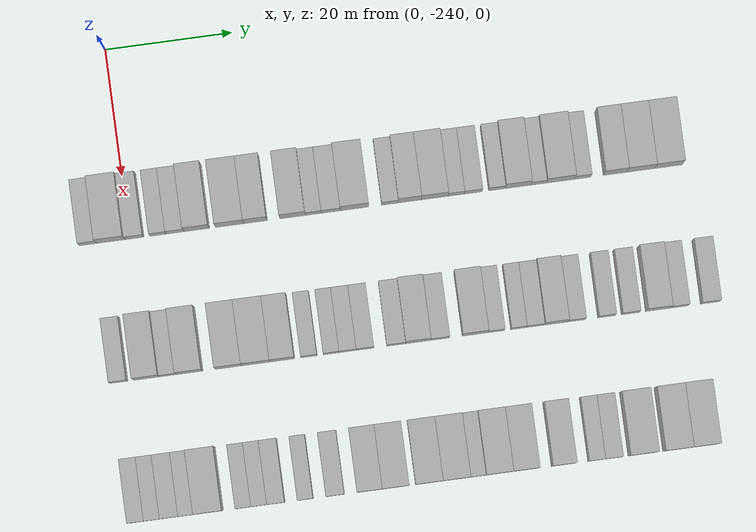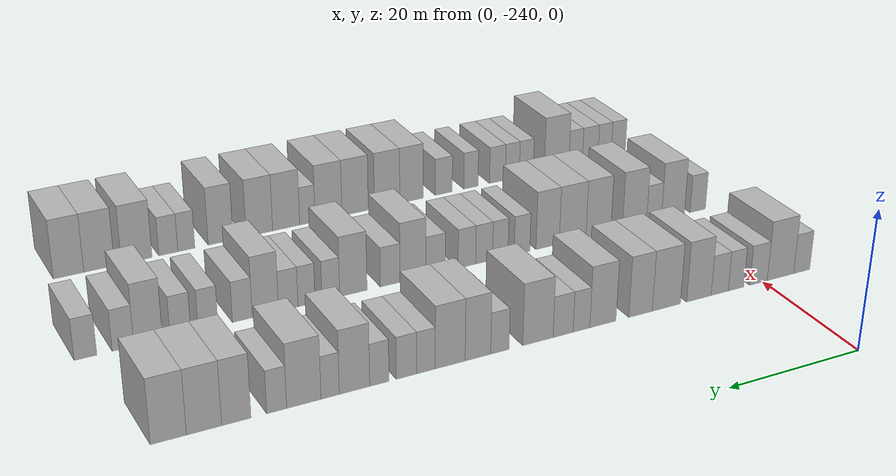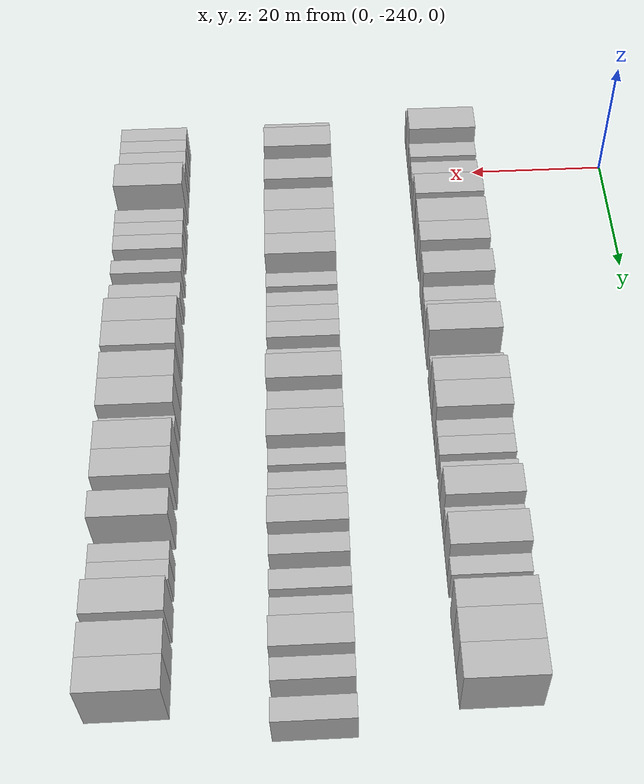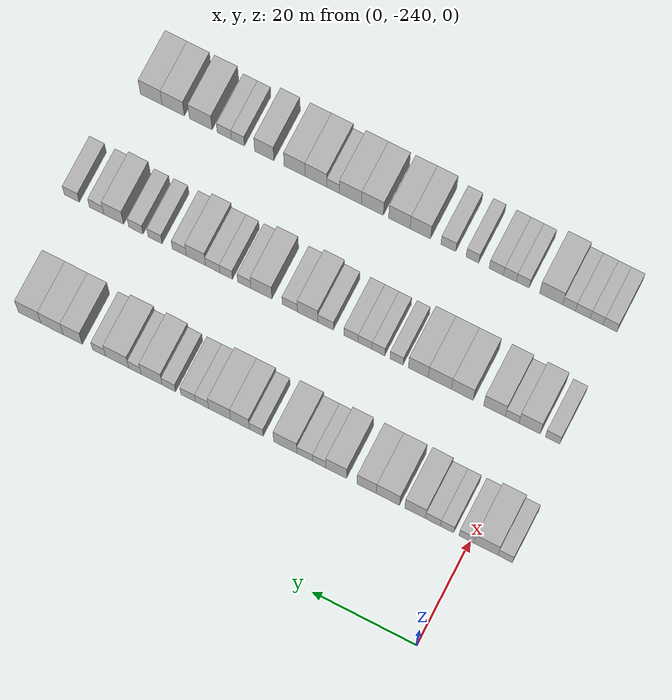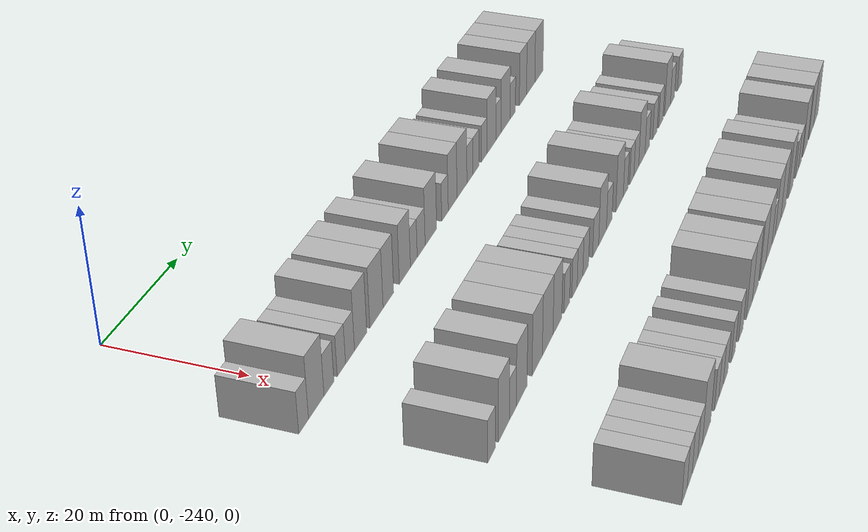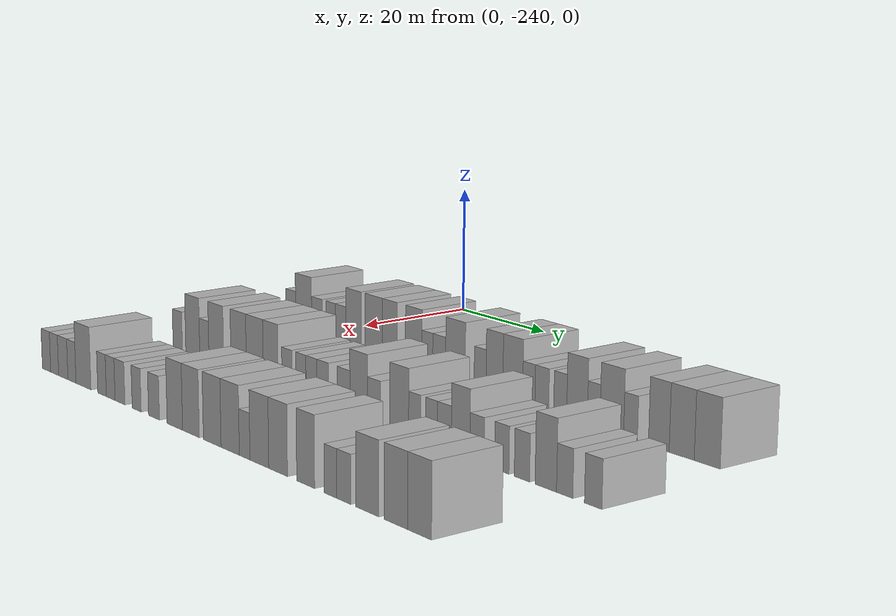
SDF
<sdf version="1.6">
 <world name="default">
  <model name="building_1">
   <static>1</static>
   <pose>25.0000 -246.6226 0 0.000000 0.000000 0.000000</pose>
   <link name="link">
    <pose>0 0 3.00 0 0 0</pose>
    <collision name="collision"><geometry><box><size>10.0000 2.7547 6.0000</size></box></geometry></collision>
    <visual name="visual">
     <cast_shadows>0</cast_shadows>
     <geometry><box><size>10.0000 2.7547 6.0000</size></box></geometry>
     <material>
      <script>
       <uri>model://HANNAS_wall/materials/scripts</uri>
       <uri>model://HANNAS_wall/materials/textures</uri>
       <name>vrc/HANNAS_wall</name>
      </script>
     </material>
    </visual>
   </link>
  </model>
  <model name="building_2">
   <static>1</static>
   <pose>25.0000 -243.0029 0 0.000000 0.000000 0.000000</pose>
   <link name="link">
    <pose>0 0 4.50 0 0 0</pose>
    <collision name="collision"><geometry><box><size>10.0000 4.4848 9.0000</size></box></geometry></collision>
    <visual name="visual">
     <cast_shadows>0</cast_shadows>
     <geometry><box><size>10.0000 4.4848 9.0000</size></box></geometry>
     <material>
      <script>
       <uri>model://HANNAS_wall/materials/scripts</uri>
       <uri>model://HANNAS_wall/materials/textures</uri>
       <name>vrc/HANNAS_wall</name>
      </script>
     </material>
    </visual>
   </link>
  </model>
  <model name="building_3">
   <static>1</static>
   <pose>25.0000 -239.2915 0 0.000000 0.000000 0.000000</pose>
   <link name="link">
    <pose>0 0 3.00 0 0 0</pose>
    <collision name="collision"><geometry><box><size>10.0000 2.9379 6.0000</size></box></geometry></collision>
    <visual name="visual">
     <cast_shadows>0</cast_shadows>
     <geometry><box><size>10.0000 2.9379 6.0000</size></box></geometry>
     <material>
      <script>
       <uri>model://HANNAS_wall/materials/scripts</uri>
       <uri>model://HANNAS_wall/materials/textures</uri>
       <name>vrc/HANNAS_wall</name>
      </script>
     </material>
    </visual>
   </link>
  </model>
  <model name="building_4">
   <static>1</static>
   <pose>25.0000 -235.5439 0 0.000000 0.000000 0.000000</pose>
   <link name="link">
    <pose>0 0 3.00 0 0 0</pose>
    <collision name="collision"><geometry><box><size>10.0000 2.5574 6.0000</size></box></geometry></collision>
    <visual name="visual">
     <cast_shadows>0</cast_shadows>
     <geometry><box><size>10.0000 2.5574 6.0000</size></box></geometry>
     <material>
      <script>
       <uri>model://HANNAS_wall/materials/scripts</uri>
       <uri>model://HANNAS_wall/materials/textures</uri>
       <name>vrc/HANNAS_wall</name>
      </script>
     </material>
    </visual>
   </link>
  </model>
  <model name="building_5">
   <static>1</static>
   <pose>25.0000 -232.8576 0 0.000000 0.000000 0.000000</pose>
   <link name="link">
    <pose>0 0 3.00 0 0 0</pose>
    <collision name="collision"><geometry><box><size>10.0000 2.8151 6.0000</size></box></geometry></collision>
    <visual name="visual">
     <cast_shadows>0</cast_shadows>
     <geometry><box><size>10.0000 2.8151 6.0000</size></box></geometry>
     <material>
      <script>
       <uri>model://HANNAS_wall/materials/scripts</uri>
       <uri>model://HANNAS_wall/materials/textures</uri>
       <name>vrc/HANNAS_wall</name>
      </script>
     </material>
    </visual>
   </link>
  </model>
  <model name="building_6">
   <static>1</static>
   <pose>25.0000 -229.4669 0 0.000000 0.000000 0.000000</pose>
   <link name="link">
    <pose>0 0 4.50 0 0 0</pose>
    <collision name="collision"><geometry><box><size>10.0000 3.9663 9.0000</size></box></geometry></collision>
    <visual name="visual">
     <cast_shadows>0</cast_shadows>
     <geometry><box><size>10.0000 3.9663 9.0000</size></box></geometry>
     <material>
      <script>
       <uri>model://HANNAS_wall/materials/scripts</uri>
       <uri>model://HANNAS_wall/materials/textures</uri>
       <name>vrc/HANNAS_wall</name>
      </script>
     </material>
    </visual>
   </link>
  </model>
  <model name="building_7">
   <static>1</static>
   <pose>25.0000 -224.2547 0 0.000000 0.000000 0.000000</pose>
   <link name="link">
    <pose>0 0 4.50 0 0 0</pose>
    <collision name="collision"><geometry><box><size>10.0000 4.4581 9.0000</size></box></geometry></collision>
    <visual name="visual">
     <cast_shadows>0</cast_shadows>
     <geometry><box><size>10.0000 4.4581 9.0000</size></box></geometry>
     <material>
      <script>
       <uri>model://HANNAS_wall/materials/scripts</uri>
       <uri>model://HANNAS_wall/materials/textures</uri>
       <name>vrc/HANNAS_wall</name>
      </script>
     </material>
    </visual>
   </link>
  </model>
  <model name="building_8">
   <static>1</static>
   <pose>25.0000 -220.1906 0 0.000000 0.000000 0.000000</pose>
   <link name="link">
    <pose>0 0 4.50 0 0 0</pose>
    <collision name="collision"><geometry><box><size>10.0000 3.6701 9.0000</size></box></geometry></collision>
    <visual name="visual">
     <cast_shadows>0</cast_shadows>
     <geometry><box><size>10.0000 3.6701 9.0000</size></box></geometry>
     <material>
      <script>
       <uri>model://HANNAS_wall/materials/scripts</uri>
       <uri>model://HANNAS_wall/materials/textures</uri>
       <name>vrc/HANNAS_wall</name>
      </script>
     </material>
    </visual>
   </link>
  </model>
  <model name="building_9">
   <static>1</static>
   <pose>25.0000 -214.3518 0 0.000000 0.000000 0.000000</pose>
   <link name="link">
    <pose>0 0 4.50 0 0 0</pose>
    <collision name="collision"><geometry><box><size>10.0000 4.0076 9.0000</size></box></geometry></collision>
    <visual name="visual">
     <cast_shadows>0</cast_shadows>
     <geometry><box><size>10.0000 4.0076 9.0000</size></box></geometry>
     <material>
      <script>
       <uri>model://HANNAS_wall/materials/scripts</uri>
       <uri>model://HANNAS_wall/materials/textures</uri>
       <name>vrc/HANNAS_wall</name>
      </script>
     </material>
    </visual>
   </link>
  </model>
  <model name="building_10">
   <static>1</static>
   <pose>25.0000 -211.0869 0 0.000000 0.000000 0.000000</pose>
   <link name="link">
    <pose>0 0 3.00 0 0 0</pose>
    <collision name="collision"><geometry><box><size>10.0000 2.5222 6.0000</size></box></geometry></collision>
    <visual name="visual">
     <cast_shadows>0</cast_shadows>
     <geometry><box><size>10.0000 2.5222 6.0000</size></box></geometry>
     <material>
      <script>
       <uri>model://HANNAS_wall/materials/scripts</uri>
       <uri>model://HANNAS_wall/materials/textures</uri>
       <name>vrc/HANNAS_wall</name>
      </script>
     </material>
    </visual>
   </link>
  </model>
  <model name="building_11">
   <static>1</static>
   <pose>25.0000 -208.3262 0 0.000000 0.000000 0.000000</pose>
   <link name="link">
    <pose>0 0 3.00 0 0 0</pose>
    <collision name="collision"><geometry><box><size>10.0000 2.9993 6.0000</size></box></geometry></collision>
    <visual name="visual">
     <cast_shadows>0</cast_shadows>
     <geometry><box><size>10.0000 2.9993 6.0000</size></box></geometry>
     <material>
      <script>
       <uri>model://HANNAS_wall/materials/scripts</uri>
       <uri>model://HANNAS_wall/materials/textures</uri>
       <name>vrc/HANNAS_wall</name>
      </script>
     </material>
    </visual>
   </link>
  </model>
  <model name="building_12">
   <static>1</static>
   <pose>25.0000 -204.5847 0 0.000000 0.000000 0.000000</pose>
   <link name="link">
    <pose>0 0 4.50 0 0 0</pose>
    <collision name="collision"><geometry><box><size>10.0000 4.4837 9.0000</size></box></geometry></collision>
    <visual name="visual">
     <cast_shadows>0</cast_shadows>
     <geometry><box><size>10.0000 4.4837 9.0000</size></box></geometry>
     <material>
      <script>
       <uri>model://HANNAS_wall/materials/scripts</uri>
       <uri>model://HANNAS_wall/materials/textures</uri>
       <name>vrc/HANNAS_wall</name>
      </script>
     </material>
    </visual>
   </link>
  </model>
  <model name="building_13">
   <static>1</static>
   <pose>25.0000 -199.0204 0 0.000000 0.000000 0.000000</pose>
   <link name="link">
    <pose>0 0 3.00 0 0 0</pose>
    <collision name="collision"><geometry><box><size>10.0000 2.6449 6.0000</size></box></geometry></collision>
    <visual name="visual">
     <cast_shadows>0</cast_shadows>
     <geometry><box><size>10.0000 2.6449 6.0000</size></box></geometry>
     <material>
      <script>
       <uri>model://HANNAS_wall/materials/scripts</uri>
       <uri>model://HANNAS_wall/materials/textures</uri>
       <name>vrc/HANNAS_wall</name>
      </script>
     </material>
    </visual>
   </link>
  </model>
  <model name="building_14">
   <static>1</static>
   <pose>25.0000 -195.8734 0 0.000000 0.000000 0.000000</pose>
   <link name="link">
    <pose>0 0 4.50 0 0 0</pose>
    <collision name="collision"><geometry><box><size>10.0000 3.6491 9.0000</size></box></geometry></collision>
    <visual name="visual">
     <cast_shadows>0</cast_shadows>
     <geometry><box><size>10.0000 3.6491 9.0000</size></box></geometry>
     <material>
      <script>
       <uri>model://HANNAS_wall/materials/scripts</uri>
       <uri>model://HANNAS_wall/materials/textures</uri>
       <name>vrc/HANNAS_wall</name>
      </script>
     </material>
    </visual>
   </link>
  </model>
  <model name="building_15">
   <static>1</static>
   <pose>25.0000 -191.9435 0 0.000000 0.000000 0.000000</pose>
   <link name="link">
    <pose>0 0 4.50 0 0 0</pose>
    <collision name="collision"><geometry><box><size>10.0000 4.2108 9.0000</size></box></geometry></collision>
    <visual name="visual">
     <cast_shadows>0</cast_shadows>
     <geometry><box><size>10.0000 4.2108 9.0000</size></box></geometry>
     <material>
      <script>
       <uri>model://HANNAS_wall/materials/scripts</uri>
       <uri>model://HANNAS_wall/materials/textures</uri>
       <name>vrc/HANNAS_wall</name>
      </script>
     </material>
    </visual>
   </link>
  </model>
  <model name="building_16">
   <static>1</static>
   <pose>25.0000 -188.5577 0 0.000000 0.000000 0.000000</pose>
   <link name="link">
    <pose>0 0 3.00 0 0 0</pose>
    <collision name="collision"><geometry><box><size>10.0000 2.5607 6.0000</size></box></geometry></collision>
    <visual name="visual">
     <cast_shadows>0</cast_shadows>
     <geometry><box><size>10.0000 2.5607 6.0000</size></box></geometry>
     <material>
      <script>
       <uri>model://HANNAS_wall/materials/scripts</uri>
       <uri>model://HANNAS_wall/materials/textures</uri>
       <name>vrc/HANNAS_wall</name>
      </script>
     </material>
    </visual>
   </link>
  </model>
  <model name="building_17">
   <static>1</static>
   <pose>25.0000 -185.8615 0 0.000000 0.000000 0.000000</pose>
   <link name="link">
    <pose>0 0 3.00 0 0 0</pose>
    <collision name="collision"><geometry><box><size>10.0000 2.8317 6.0000</size></box></geometry></collision>
    <visual name="visual">
     <cast_shadows>0</cast_shadows>
     <geometry><box><size>10.0000 2.8317 6.0000</size></box></geometry>
     <material>
      <script>
       <uri>model://HANNAS_wall/materials/scripts</uri>
       <uri>model://HANNAS_wall/materials/textures</uri>
       <name>vrc/HANNAS_wall</name>
      </script>
     </material>
    </visual>
   </link>
  </model>
  <model name="building_18">
   <static>1</static>
   <pose>25.0000 -182.1435 0 0.000000 0.000000 0.000000</pose>
   <link name="link">
    <pose>0 0 3.00 0 0 0</pose>
    <collision name="collision"><geometry><box><size>10.0000 2.6043 6.0000</size></box></geometry></collision>
    <visual name="visual">
     <cast_shadows>0</cast_shadows>
     <geometry><box><size>10.0000 2.6043 6.0000</size></box></geometry>
     <material>
      <script>
       <uri>model://HANNAS_wall/materials/scripts</uri>
       <uri>model://HANNAS_wall/materials/textures</uri>
       <name>vrc/HANNAS_wall</name>
      </script>
     </material>
    </visual>
   </link>
  </model>
  <model name="building_19">
   <static>1</static>
   <pose>25.0000 -178.8061 0 0.000000 0.000000 0.000000</pose>
   <link name="link">
    <pose>0 0 4.50 0 0 0</pose>
    <collision name="collision"><geometry><box><size>10.0000 4.0706 9.0000</size></box></geometry></collision>
    <visual name="visual">
     <cast_shadows>0</cast_shadows>
     <geometry><box><size>10.0000 4.0706 9.0000</size></box></geometry>
     <material>
      <script>
       <uri>model://HANNAS_wall/materials/scripts</uri>
       <uri>model://HANNAS_wall/materials/textures</uri>
       <name>vrc/HANNAS_wall</name>
      </script>
     </material>
    </visual>
   </link>
  </model>
  <model name="building_20">
   <static>1</static>
   <pose>25.0000 -175.5653 0 0.000000 0.000000 0.000000</pose>
   <link name="link">
    <pose>0 0 3.00 0 0 0</pose>
    <collision name="collision"><geometry><box><size>10.0000 2.4108 6.0000</size></box></geometry></collision>
    <visual name="visual">
     <cast_shadows>0</cast_shadows>
     <geometry><box><size>10.0000 2.4108 6.0000</size></box></geometry>
     <material>
      <script>
       <uri>model://HANNAS_wall/materials/scripts</uri>
       <uri>model://HANNAS_wall/materials/textures</uri>
       <name>vrc/HANNAS_wall</name>
      </script>
     </material>
    </visual>
   </link>
  </model>
  <model name="building_21">
   <static>1</static>
   <pose>25.0000 -172.1222 0 0.000000 0.000000 0.000000</pose>
   <link name="link">
    <pose>0 0 4.50 0 0 0</pose>
    <collision name="collision"><geometry><box><size>10.0000 4.4754 9.0000</size></box></geometry></collision>
    <visual name="visual">
     <cast_shadows>0</cast_shadows>
     <geometry><box><size>10.0000 4.4754 9.0000</size></box></geometry>
     <material>
      <script>
       <uri>model://HANNAS_wall/materials/scripts</uri>
       <uri>model://HANNAS_wall/materials/textures</uri>
       <name>vrc/HANNAS_wall</name>
      </script>
     </material>
    </visual>
   </link>
  </model>
  <model name="building_22">
   <static>1</static>
   <pose>25.0000 -168.6084 0 0.000000 0.000000 0.000000</pose>
   <link name="link">
    <pose>0 0 3.00 0 0 0</pose>
    <collision name="collision"><geometry><box><size>10.0000 2.5524 6.0000</size></box></geometry></collision>
    <visual name="visual">
     <cast_shadows>0</cast_shadows>
     <geometry><box><size>10.0000 2.5524 6.0000</size></box></geometry>
     <material>
      <script>
       <uri>model://HANNAS_wall/materials/scripts</uri>
       <uri>model://HANNAS_wall/materials/textures</uri>
       <name>vrc/HANNAS_wall</name>
      </script>
     </material>
    </visual>
   </link>
  </model>
  <model name="building_23">
   <static>1</static>
   <pose>25.0000 -163.4872 0 0.000000 0.000000 0.000000</pose>
   <link name="link">
    <pose>0 0 4.50 0 0 0</pose>
    <collision name="collision"><geometry><box><size>10.0000 3.6900 9.0000</size></box></geometry></collision>
    <visual name="visual">
     <cast_shadows>0</cast_shadows>
     <geometry><box><size>10.0000 3.6900 9.0000</size></box></geometry>
     <material>
      <script>
       <uri>model://HANNAS_wall/materials/scripts</uri>
       <uri>model://HANNAS_wall/materials/textures</uri>
       <name>vrc/HANNAS_wall</name>
      </script>
     </material>
    </visual>
   </link>
  </model>
  <model name="building_24">
   <static>1</static>
   <pose>25.0000 -159.4604 0 0.000000 0.000000 0.000000</pose>
   <link name="link">
    <pose>0 0 4.50 0 0 0</pose>
    <collision name="collision"><geometry><box><size>10.0000 4.3637 9.0000</size></box></geometry></collision>
    <visual name="visual">
     <cast_shadows>0</cast_shadows>
     <geometry><box><size>10.0000 4.3637 9.0000</size></box></geometry>
     <material>
      <script>
       <uri>model://HANNAS_wall/materials/scripts</uri>
       <uri>model://HANNAS_wall/materials/textures</uri>
       <name>vrc/HANNAS_wall</name>
      </script>
     </material>
    </visual>
   </link>
  </model>
  <model name="building_25">
   <static>1</static>
   <pose>25.0000 -155.0788 0 0.000000 0.000000 0.000000</pose>
   <link name="link">
    <pose>0 0 4.50 0 0 0</pose>
    <collision name="collision"><geometry><box><size>10.0000 4.3995 9.0000</size></box></geometry></collision>
    <visual name="visual">
     <cast_shadows>0</cast_shadows>
     <geometry><box><size>10.0000 4.3995 9.0000</size></box></geometry>
     <material>
      <script>
       <uri>model://HANNAS_wall/materials/scripts</uri>
       <uri>model://HANNAS_wall/materials/textures</uri>
       <name>vrc/HANNAS_wall</name>
      </script>
     </material>
    </visual>
   </link>
  </model>
  <model name="building_123">
   <static>1</static>
   <pose>47.0000 -244.6189 0 0.000000 0.000000 0.000000</pose>
   <link name="link">
    <pose>0 0 3.00 0 0 0</pose>
    <collision name="collision"><geometry><box><size>10.0000 2.7623 6.0000</size></box></geometry></collision>
    <visual name="visual">
     <cast_shadows>0</cast_shadows>
     <geometry><box><size>10.0000 2.7623 6.0000</size></box></geometry>
     <material>
      <script>
       <uri>model://HANNAS_wall/materials/scripts</uri>
       <uri>model://HANNAS_wall/materials/textures</uri>
       <name>vrc/HANNAS_wall</name>
      </script>
     </material>
    </visual>
   </link>
  </model>
  <model name="building_124">
   <static>1</static>
   <pose>47.0000 -240.2097 0 0.000000 0.000000 0.000000</pose>
   <link name="link">
    <pose>0 0 4.50 0 0 0</pose>
    <collision name="collision"><geometry><box><size>10.0000 4.0561 9.0000</size></box></geometry></collision>
    <visual name="visual">
     <cast_shadows>0</cast_shadows>
     <geometry><box><size>10.0000 4.0561 9.0000</size></box></geometry>
     <material>
      <script>
       <uri>model://HANNAS_wall/materials/scripts</uri>
       <uri>model://HANNAS_wall/materials/textures</uri>
       <name>vrc/HANNAS_wall</name>
      </script>
     </material>
    </visual>
   </link>
  </model>
  <model name="building_125">
   <static>1</static>
   <pose>47.0000 -236.8779 0 0.000000 0.000000 0.000000</pose>
   <link name="link">
    <pose>0 0 3.00 0 0 0</pose>
    <collision name="collision"><geometry><box><size>10.0000 2.6075 6.0000</size></box></geometry></collision>
    <visual name="visual">
     <cast_shadows>0</cast_shadows>
     <geometry><box><size>10.0000 2.6075 6.0000</size></box></geometry>
     <material>
      <script>
       <uri>model://HANNAS_wall/materials/scripts</uri>
       <uri>model://HANNAS_wall/materials/textures</uri>
       <name>vrc/HANNAS_wall</name>
      </script>
     </material>
    </visual>
   </link>
  </model>
  <model name="building_126">
   <static>1</static>
   <pose>47.0000 -233.4958 0 0.000000 0.000000 0.000000</pose>
   <link name="link">
    <pose>0 0 4.50 0 0 0</pose>
    <collision name="collision"><geometry><box><size>10.0000 4.1568 9.0000</size></box></geometry></collision>
    <visual name="visual">
     <cast_shadows>0</cast_shadows>
     <geometry><box><size>10.0000 4.1568 9.0000</size></box></geometry>
     <material>
      <script>
       <uri>model://HANNAS_wall/materials/scripts</uri>
       <uri>model://HANNAS_wall/materials/textures</uri>
       <name>vrc/HANNAS_wall</name>
      </script>
     </material>
    </visual>
   </link>
  </model>
  <model name="building_127">
   <static>1</static>
   <pose>47.0000 -227.3287 0 0.000000 0.000000 0.000000</pose>
   <link name="link">
    <pose>0 0 4.50 0 0 0</pose>
    <collision name="collision"><geometry><box><size>10.0000 4.1775 9.0000</size></box></geometry></collision>
    <visual name="visual">
     <cast_shadows>0</cast_shadows>
     <geometry><box><size>10.0000 4.1775 9.0000</size></box></geometry>
     <material>
      <script>
       <uri>model://HANNAS_wall/materials/scripts</uri>
       <uri>model://HANNAS_wall/materials/textures</uri>
       <name>vrc/HANNAS_wall</name>
      </script>
     </material>
    </visual>
   </link>
  </model>
  <model name="building_128">
   <static>1</static>
   <pose>47.0000 -223.0070 0 0.000000 0.000000 0.000000</pose>
   <link name="link">
    <pose>0 0 4.50 0 0 0</pose>
    <collision name="collision"><geometry><box><size>10.0000 4.4659 9.0000</size></box></geometry></collision>
    <visual name="visual">
     <cast_shadows>0</cast_shadows>
     <geometry><box><size>10.0000 4.4659 9.0000</size></box></geometry>
     <material>
      <script>
       <uri>model://HANNAS_wall/materials/scripts</uri>
       <uri>model://HANNAS_wall/materials/textures</uri>
       <name>vrc/HANNAS_wall</name>
      </script>
     </material>
    </visual>
   </link>
  </model>
  <model name="building_129">
   <static>1</static>
   <pose>47.0000 -218.8635 0 0.000000 0.000000 0.000000</pose>
   <link name="link">
    <pose>0 0 4.50 0 0 0</pose>
    <collision name="collision"><geometry><box><size>10.0000 3.8210 9.0000</size></box></geometry></collision>
    <visual name="visual">
     <cast_shadows>0</cast_shadows>
     <geometry><box><size>10.0000 3.8210 9.0000</size></box></geometry>
     <material>
      <script>
       <uri>model://HANNAS_wall/materials/scripts</uri>
       <uri>model://HANNAS_wall/materials/textures</uri>
       <name>vrc/HANNAS_wall</name>
      </script>
     </material>
    </visual>
   </link>
  </model>
  <model name="building_130">
   <static>1</static>
   <pose>47.0000 -214.6865 0 0.000000 0.000000 0.000000</pose>
   <link name="link">
    <pose>0 0 3.00 0 0 0</pose>
    <collision name="collision"><geometry><box><size>10.0000 2.5330 6.0000</size></box></geometry></collision>
    <visual name="visual">
     <cast_shadows>0</cast_shadows>
     <geometry><box><size>10.0000 2.5330 6.0000</size></box></geometry>
     <material>
      <script>
       <uri>model://HANNAS_wall/materials/scripts</uri>
       <uri>model://HANNAS_wall/materials/textures</uri>
       <name>vrc/HANNAS_wall</name>
      </script>
     </material>
    </visual>
   </link>
  </model>
  <model name="building_131">
   <static>1</static>
   <pose>47.0000 -211.1869 0 0.000000 0.000000 0.000000</pose>
   <link name="link">
    <pose>0 0 3.00 0 0 0</pose>
    <collision name="collision"><geometry><box><size>10.0000 2.4663 6.0000</size></box></geometry></collision>
    <visual name="visual">
     <cast_shadows>0</cast_shadows>
     <geometry><box><size>10.0000 2.4663 6.0000</size></box></geometry>
     <material>
      <script>
       <uri>model://HANNAS_wall/materials/scripts</uri>
       <uri>model://HANNAS_wall/materials/textures</uri>
       <name>vrc/HANNAS_wall</name>
      </script>
     </material>
    </visual>
   </link>
  </model>
  <model name="building_132">
   <static>1</static>
   <pose>47.0000 -208.6110 0 0.000000 0.000000 0.000000</pose>
   <link name="link">
    <pose>0 0 3.00 0 0 0</pose>
    <collision name="collision"><geometry><box><size>10.0000 2.6854 6.0000</size></box></geometry></collision>
    <visual name="visual">
     <cast_shadows>0</cast_shadows>
     <geometry><box><size>10.0000 2.6854 6.0000</size></box></geometry>
     <material>
      <script>
       <uri>model://HANNAS_wall/materials/scripts</uri>
       <uri>model://HANNAS_wall/materials/textures</uri>
       <name>vrc/HANNAS_wall</name>
      </script>
     </material>
    </visual>
   </link>
  </model>
  <model name="building_133">
   <static>1</static>
   <pose>47.0000 -205.8817 0 0.000000 0.000000 0.000000</pose>
   <link name="link">
    <pose>0 0 3.00 0 0 0</pose>
    <collision name="collision"><geometry><box><size>10.0000 2.7733 6.0000</size></box></geometry></collision>
    <visual name="visual">
     <cast_shadows>0</cast_shadows>
     <geometry><box><size>10.0000 2.7733 6.0000</size></box></geometry>
     <material>
      <script>
       <uri>model://HANNAS_wall/materials/scripts</uri>
       <uri>model://HANNAS_wall/materials/textures</uri>
       <name>vrc/HANNAS_wall</name>
      </script>
     </material>
    </visual>
   </link>
  </model>
  <model name="building_134">
   <static>1</static>
   <pose>47.0000 -201.0043 0 0.000000 0.000000 0.000000</pose>
   <link name="link">
    <pose>0 0 3.00 0 0 0</pose>
    <collision name="collision"><geometry><box><size>10.0000 2.9813 6.0000</size></box></geometry></collision>
    <visual name="visual">
     <cast_shadows>0</cast_shadows>
     <geometry><box><size>10.0000 2.9813 6.0000</size></box></geometry>
     <material>
      <script>
       <uri>model://HANNAS_wall/materials/scripts</uri>
       <uri>model://HANNAS_wall/materials/textures</uri>
       <name>vrc/HANNAS_wall</name>
      </script>
     </material>
    </visual>
   </link>
  </model>
  <model name="building_135">
   <static>1</static>
   <pose>47.0000 -197.5273 0 0.000000 0.000000 0.000000</pose>
   <link name="link">
    <pose>0 0 4.50 0 0 0</pose>
    <collision name="collision"><geometry><box><size>10.0000 3.9728 9.0000</size></box></geometry></collision>
    <visual name="visual">
     <cast_shadows>0</cast_shadows>
     <geometry><box><size>10.0000 3.9728 9.0000</size></box></geometry>
     <material>
      <script>
       <uri>model://HANNAS_wall/materials/scripts</uri>
       <uri>model://HANNAS_wall/materials/textures</uri>
       <name>vrc/HANNAS_wall</name>
      </script>
     </material>
    </visual>
   </link>
  </model>
  <model name="building_136">
   <static>1</static>
   <pose>47.0000 -194.0688 0 0.000000 0.000000 0.000000</pose>
   <link name="link">
    <pose>0 0 3.00 0 0 0</pose>
    <collision name="collision"><geometry><box><size>10.0000 2.9441 6.0000</size></box></geometry></collision>
    <visual name="visual">
     <cast_shadows>0</cast_shadows>
     <geometry><box><size>10.0000 2.9441 6.0000</size></box></geometry>
     <material>
      <script>
       <uri>model://HANNAS_wall/materials/scripts</uri>
       <uri>model://HANNAS_wall/materials/textures</uri>
       <name>vrc/HANNAS_wall</name>
      </script>
     </material>
    </visual>
   </link>
  </model>
  <model name="building_137">
   <static>1</static>
   <pose>47.0000 -188.5666 0 0.000000 0.000000 0.000000</pose>
   <link name="link">
    <pose>0 0 4.50 0 0 0</pose>
    <collision name="collision"><geometry><box><size>10.0000 4.0603 9.0000</size></box></geometry></collision>
    <visual name="visual">
     <cast_shadows>0</cast_shadows>
     <geometry><box><size>10.0000 4.0603 9.0000</size></box></geometry>
     <material>
      <script>
       <uri>model://HANNAS_wall/materials/scripts</uri>
       <uri>model://HANNAS_wall/materials/textures</uri>
       <name>vrc/HANNAS_wall</name>
      </script>
     </material>
    </visual>
   </link>
  </model>
  <model name="building_138">
   <static>1</static>
   <pose>47.0000 -185.2454 0 0.000000 0.000000 0.000000</pose>
   <link name="link">
    <pose>0 0 3.00 0 0 0</pose>
    <collision name="collision"><geometry><box><size>10.0000 2.5821 6.0000</size></box></geometry></collision>
    <visual name="visual">
     <cast_shadows>0</cast_shadows>
     <geometry><box><size>10.0000 2.5821 6.0000</size></box></geometry>
     <material>
      <script>
       <uri>model://HANNAS_wall/materials/scripts</uri>
       <uri>model://HANNAS_wall/materials/textures</uri>
       <name>vrc/HANNAS_wall</name>
      </script>
     </material>
    </visual>
   </link>
  </model>
  <model name="building_139">
   <static>1</static>
   <pose>47.0000 -181.7295 0 0.000000 0.000000 0.000000</pose>
   <link name="link">
    <pose>0 0 3.00 0 0 0</pose>
    <collision name="collision"><geometry><box><size>10.0000 2.4498 6.0000</size></box></geometry></collision>
    <visual name="visual">
     <cast_shadows>0</cast_shadows>
     <geometry><box><size>10.0000 2.4498 6.0000</size></box></geometry>
     <material>
      <script>
       <uri>model://HANNAS_wall/materials/scripts</uri>
       <uri>model://HANNAS_wall/materials/textures</uri>
       <name>vrc/HANNAS_wall</name>
      </script>
     </material>
    </visual>
   </link>
  </model>
  <model name="building_140">
   <static>1</static>
   <pose>47.0000 -179.1111 0 0.000000 0.000000 0.000000</pose>
   <link name="link">
    <pose>0 0 3.00 0 0 0</pose>
    <collision name="collision"><geometry><box><size>10.0000 2.7870 6.0000</size></box></geometry></collision>
    <visual name="visual">
     <cast_shadows>0</cast_shadows>
     <geometry><box><size>10.0000 2.7870 6.0000</size></box></geometry>
     <material>
      <script>
       <uri>model://HANNAS_wall/materials/scripts</uri>
       <uri>model://HANNAS_wall/materials/textures</uri>
       <name>vrc/HANNAS_wall</name>
      </script>
     </material>
    </visual>
   </link>
  </model>
  <model name="building_141">
   <static>1</static>
   <pose>47.0000 -175.8587 0 0.000000 0.000000 0.000000</pose>
   <link name="link">
    <pose>0 0 4.50 0 0 0</pose>
    <collision name="collision"><geometry><box><size>10.0000 3.7177 9.0000</size></box></geometry></collision>
    <visual name="visual">
     <cast_shadows>0</cast_shadows>
     <geometry><box><size>10.0000 3.7177 9.0000</size></box></geometry>
     <material>
      <script>
       <uri>model://HANNAS_wall/materials/scripts</uri>
       <uri>model://HANNAS_wall/materials/textures</uri>
       <name>vrc/HANNAS_wall</name>
      </script>
     </material>
    </visual>
   </link>
  </model>
  <model name="building_142">
   <static>1</static>
   <pose>47.0000 -172.6170 0 0.000000 0.000000 0.000000</pose>
   <link name="link">
    <pose>0 0 3.00 0 0 0</pose>
    <collision name="collision"><geometry><box><size>10.0000 2.7658 6.0000</size></box></geometry></collision>
    <visual name="visual">
     <cast_shadows>0</cast_shadows>
     <geometry><box><size>10.0000 2.7658 6.0000</size></box></geometry>
     <material>
      <script>
       <uri>model://HANNAS_wall/materials/scripts</uri>
       <uri>model://HANNAS_wall/materials/textures</uri>
       <name>vrc/HANNAS_wall</name>
      </script>
     </material>
    </visual>
   </link>
  </model>
  <model name="building_143">
   <static>1</static>
   <pose>47.0000 -167.8727 0 0.000000 0.000000 0.000000</pose>
   <link name="link">
    <pose>0 0 3.00 0 0 0</pose>
    <collision name="collision"><geometry><box><size>10.0000 2.7228 6.0000</size></box></geometry></collision>
    <visual name="visual">
     <cast_shadows>0</cast_shadows>
     <geometry><box><size>10.0000 2.7228 6.0000</size></box></geometry>
     <material>
      <script>
       <uri>model://HANNAS_wall/materials/scripts</uri>
       <uri>model://HANNAS_wall/materials/textures</uri>
       <name>vrc/HANNAS_wall</name>
      </script>
     </material>
    </visual>
   </link>
  </model>
  <model name="building_144">
   <static>1</static>
   <pose>47.0000 -164.1065 0 0.000000 0.000000 0.000000</pose>
   <link name="link">
    <pose>0 0 3.00 0 0 0</pose>
    <collision name="collision"><geometry><box><size>10.0000 2.8094 6.0000</size></box></geometry></collision>
    <visual name="visual">
     <cast_shadows>0</cast_shadows>
     <geometry><box><size>10.0000 2.8094 6.0000</size></box></geometry>
     <material>
      <script>
       <uri>model://HANNAS_wall/materials/scripts</uri>
       <uri>model://HANNAS_wall/materials/textures</uri>
       <name>vrc/HANNAS_wall</name>
      </script>
     </material>
    </visual>
   </link>
  </model>
  <model name="building_145">
   <static>1</static>
   <pose>47.0000 -159.7898 0 0.000000 0.000000 0.000000</pose>
   <link name="link">
    <pose>0 0 4.50 0 0 0</pose>
    <collision name="collision"><geometry><box><size>10.0000 3.8240 9.0000</size></box></geometry></collision>
    <visual name="visual">
     <cast_shadows>0</cast_shadows>
     <geometry><box><size>10.0000 3.8240 9.0000</size></box></geometry>
     <material>
      <script>
       <uri>model://HANNAS_wall/materials/scripts</uri>
       <uri>model://HANNAS_wall/materials/textures</uri>
       <name>vrc/HANNAS_wall</name>
      </script>
     </material>
    </visual>
   </link>
  </model>
  <model name="building_146">
   <static>1</static>
   <pose>47.0000 -156.4510 0 0.000000 0.000000 0.000000</pose>
   <link name="link">
    <pose>0 0 3.00 0 0 0</pose>
    <collision name="collision"><geometry><box><size>10.0000 2.8535 6.0000</size></box></geometry></collision>
    <visual name="visual">
     <cast_shadows>0</cast_shadows>
     <geometry><box><size>10.0000 2.8535 6.0000</size></box></geometry>
     <material>
      <script>
       <uri>model://HANNAS_wall/materials/scripts</uri>
       <uri>model://HANNAS_wall/materials/textures</uri>
       <name>vrc/HANNAS_wall</name>
      </script>
     </material>
    </visual>
   </link>
  </model>
  <model name="building_147">
   <static>1</static>
   <pose>47.0000 -151.5551 0 0.000000 0.000000 0.000000</pose>
   <link name="link">
    <pose>0 0 3.00 0 0 0</pose>
    <collision name="collision"><geometry><box><size>10.0000 2.9384 6.0000</size></box></geometry></collision>
    <visual name="visual">
     <cast_shadows>0</cast_shadows>
     <geometry><box><size>10.0000 2.9384 6.0000</size></box></geometry>
     <material>
      <script>
       <uri>model://HANNAS_wall/materials/scripts</uri>
       <uri>model://HANNAS_wall/materials/textures</uri>
       <name>vrc/HANNAS_wall</name>
      </script>
     </material>
    </visual>
   </link>
  </model>
  <model name="building_241">
   <static>1</static>
   <pose>69.0000 -244.6841 0 0.000000 0.000000 0.000000</pose>
   <link name="link">
    <pose>0 0 3.00 0 0 0</pose>
    <collision name="collision"><geometry><box><size>10.0000 2.6319 6.0000</size></box></geometry></collision>
    <visual name="visual">
     <cast_shadows>0</cast_shadows>
     <geometry><box><size>10.0000 2.6319 6.0000</size></box></geometry>
     <material>
      <script>
       <uri>model://HANNAS_wall/materials/scripts</uri>
       <uri>model://HANNAS_wall/materials/textures</uri>
       <name>vrc/HANNAS_wall</name>
      </script>
     </material>
    </visual>
   </link>
  </model>
  <model name="building_242">
   <static>1</static>
   <pose>69.0000 -242.1281 0 0.000000 0.000000 0.000000</pose>
   <link name="link">
    <pose>0 0 3.00 0 0 0</pose>
    <collision name="collision"><geometry><box><size>10.0000 2.4799 6.0000</size></box></geometry></collision>
    <visual name="visual">
     <cast_shadows>0</cast_shadows>
     <geometry><box><size>10.0000 2.4799 6.0000</size></box></geometry>
     <material>
      <script>
       <uri>model://HANNAS_wall/materials/scripts</uri>
       <uri>model://HANNAS_wall/materials/textures</uri>
       <name>vrc/HANNAS_wall</name>
      </script>
     </material>
    </visual>
   </link>
  </model>
  <model name="building_243">
   <static>1</static>
   <pose>69.0000 -239.4547 0 0.000000 0.000000 0.000000</pose>
   <link name="link">
    <pose>0 0 3.00 0 0 0</pose>
    <collision name="collision"><geometry><box><size>10.0000 2.8669 6.0000</size></box></geometry></collision>
    <visual name="visual">
     <cast_shadows>0</cast_shadows>
     <geometry><box><size>10.0000 2.8669 6.0000</size></box></geometry>
     <material>
      <script>
       <uri>model://HANNAS_wall/materials/scripts</uri>
       <uri>model://HANNAS_wall/materials/textures</uri>
       <name>vrc/HANNAS_wall</name>
      </script>
     </material>
    </visual>
   </link>
  </model>
  <model name="building_244">
   <static>1</static>
   <pose>69.0000 -236.7910 0 0.000000 0.000000 0.000000</pose>
   <link name="link">
    <pose>0 0 3.00 0 0 0</pose>
    <collision name="collision"><geometry><box><size>10.0000 2.4605 6.0000</size></box></geometry></collision>
    <visual name="visual">
     <cast_shadows>0</cast_shadows>
     <geometry><box><size>10.0000 2.4605 6.0000</size></box></geometry>
     <material>
      <script>
       <uri>model://HANNAS_wall/materials/scripts</uri>
       <uri>model://HANNAS_wall/materials/textures</uri>
       <name>vrc/HANNAS_wall</name>
      </script>
     </material>
    </visual>
   </link>
  </model>
  <model name="building_245">
   <static>1</static>
   <pose>69.0000 -233.3370 0 0.000000 0.000000 0.000000</pose>
   <link name="link">
    <pose>0 0 4.50 0 0 0</pose>
    <collision name="collision"><geometry><box><size>10.0000 4.4476 9.0000</size></box></geometry></collision>
    <visual name="visual">
     <cast_shadows>0</cast_shadows>
     <geometry><box><size>10.0000 4.4476 9.0000</size></box></geometry>
     <material>
      <script>
       <uri>model://HANNAS_wall/materials/scripts</uri>
       <uri>model://HANNAS_wall/materials/textures</uri>
       <name>vrc/HANNAS_wall</name>
      </script>
     </material>
    </visual>
   </link>
  </model>
  <model name="building_246">
   <static>1</static>
   <pose>69.0000 -227.8785 0 0.000000 0.000000 0.000000</pose>
   <link name="link">
    <pose>0 0 3.00 0 0 0</pose>
    <collision name="collision"><geometry><box><size>10.0000 2.4693 6.0000</size></box></geometry></collision>
    <visual name="visual">
     <cast_shadows>0</cast_shadows>
     <geometry><box><size>10.0000 2.4693 6.0000</size></box></geometry>
     <material>
      <script>
       <uri>model://HANNAS_wall/materials/scripts</uri>
       <uri>model://HANNAS_wall/materials/textures</uri>
       <name>vrc/HANNAS_wall</name>
      </script>
     </material>
    </visual>
   </link>
  </model>
  <model name="building_247">
   <static>1</static>
   <pose>69.0000 -225.4055 0 0.000000 0.000000 0.000000</pose>
   <link name="link">
    <pose>0 0 3.00 0 0 0</pose>
    <collision name="collision"><geometry><box><size>10.0000 2.4768 6.0000</size></box></geometry></collision>
    <visual name="visual">
     <cast_shadows>0</cast_shadows>
     <geometry><box><size>10.0000 2.4768 6.0000</size></box></geometry>
     <material>
      <script>
       <uri>model://HANNAS_wall/materials/scripts</uri>
       <uri>model://HANNAS_wall/materials/textures</uri>
       <name>vrc/HANNAS_wall</name>
      </script>
     </material>
    </visual>
   </link>
  </model>
  <model name="building_248">
   <static>1</static>
   <pose>69.0000 -222.7840 0 0.000000 0.000000 0.000000</pose>
   <link name="link">
    <pose>0 0 3.00 0 0 0</pose>
    <collision name="collision"><geometry><box><size>10.0000 2.7662 6.0000</size></box></geometry></collision>
    <visual name="visual">
     <cast_shadows>0</cast_shadows>
     <geometry><box><size>10.0000 2.7662 6.0000</size></box></geometry>
     <material>
      <script>
       <uri>model://HANNAS_wall/materials/scripts</uri>
       <uri>model://HANNAS_wall/materials/textures</uri>
       <name>vrc/HANNAS_wall</name>
      </script>
     </material>
    </visual>
   </link>
  </model>
  <model name="building_249">
   <static>1</static>
   <pose>69.0000 -218.1754 0 0.000000 0.000000 0.000000</pose>
   <link name="link">
    <pose>0 0 3.00 0 0 0</pose>
    <collision name="collision"><geometry><box><size>10.0000 2.4511 6.0000</size></box></geometry></collision>
    <visual name="visual">
     <cast_shadows>0</cast_shadows>
     <geometry><box><size>10.0000 2.4511 6.0000</size></box></geometry>
     <material>
      <script>
       <uri>model://HANNAS_wall/materials/scripts</uri>
       <uri>model://HANNAS_wall/materials/textures</uri>
       <name>vrc/HANNAS_wall</name>
      </script>
     </material>
    </visual>
   </link>
  </model>
  <model name="building_250">
   <static>1</static>
   <pose>69.0000 -213.5062 0 0.000000 0.000000 0.000000</pose>
   <link name="link">
    <pose>0 0 3.00 0 0 0</pose>
    <collision name="collision"><geometry><box><size>10.0000 2.8872 6.0000</size></box></geometry></collision>
    <visual name="visual">
     <cast_shadows>0</cast_shadows>
     <geometry><box><size>10.0000 2.8872 6.0000</size></box></geometry>
     <material>
      <script>
       <uri>model://HANNAS_wall/materials/scripts</uri>
       <uri>model://HANNAS_wall/materials/textures</uri>
       <name>vrc/HANNAS_wall</name>
      </script>
     </material>
    </visual>
   </link>
  </model>
  <model name="building_251">
   <static>1</static>
   <pose>69.0000 -208.0823 0 0.000000 0.000000 0.000000</pose>
   <link name="link">
    <pose>0 0 4.50 0 0 0</pose>
    <collision name="collision"><geometry><box><size>10.0000 3.9607 9.0000</size></box></geometry></collision>
    <visual name="visual">
     <cast_shadows>0</cast_shadows>
     <geometry><box><size>10.0000 3.9607 9.0000</size></box></geometry>
     <material>
      <script>
       <uri>model://HANNAS_wall/materials/scripts</uri>
       <uri>model://HANNAS_wall/materials/textures</uri>
       <name>vrc/HANNAS_wall</name>
      </script>
     </material>
    </visual>
   </link>
  </model>
  <model name="building_252">
   <static>1</static>
   <pose>69.0000 -204.0097 0 0.000000 0.000000 0.000000</pose>
   <link name="link">
    <pose>0 0 4.50 0 0 0</pose>
    <collision name="collision"><geometry><box><size>10.0000 4.1844 9.0000</size></box></geometry></collision>
    <visual name="visual">
     <cast_shadows>0</cast_shadows>
     <geometry><box><size>10.0000 4.1844 9.0000</size></box></geometry>
     <material>
      <script>
       <uri>model://HANNAS_wall/materials/scripts</uri>
       <uri>model://HANNAS_wall/materials/textures</uri>
       <name>vrc/HANNAS_wall</name>
      </script>
     </material>
    </visual>
   </link>
  </model>
  <model name="building_253">
   <static>1</static>
   <pose>69.0000 -198.7781 0 0.000000 0.000000 0.000000</pose>
   <link name="link">
    <pose>0 0 4.50 0 0 0</pose>
    <collision name="collision"><geometry><box><size>10.0000 4.2788 9.0000</size></box></geometry></collision>
    <visual name="visual">
     <cast_shadows>0</cast_shadows>
     <geometry><box><size>10.0000 4.2788 9.0000</size></box></geometry>
     <material>
      <script>
       <uri>model://HANNAS_wall/materials/scripts</uri>
       <uri>model://HANNAS_wall/materials/textures</uri>
       <name>vrc/HANNAS_wall</name>
      </script>
     </material>
    </visual>
   </link>
  </model>
  <model name="building_254">
   <static>1</static>
   <pose>69.0000 -194.4857 0 0.000000 0.000000 0.000000</pose>
   <link name="link">
    <pose>0 0 4.50 0 0 0</pose>
    <collision name="collision"><geometry><box><size>10.0000 4.3061 9.0000</size></box></geometry></collision>
    <visual name="visual">
     <cast_shadows>0</cast_shadows>
     <geometry><box><size>10.0000 4.3061 9.0000</size></box></geometry>
     <material>
      <script>
       <uri>model://HANNAS_wall/materials/scripts</uri>
       <uri>model://HANNAS_wall/materials/textures</uri>
       <name>vrc/HANNAS_wall</name>
      </script>
     </material>
    </visual>
   </link>
  </model>
  <model name="building_255">
   <static>1</static>
   <pose>69.0000 -191.1134 0 0.000000 0.000000 0.000000</pose>
   <link name="link">
    <pose>0 0 3.00 0 0 0</pose>
    <collision name="collision"><geometry><box><size>10.0000 2.4384 6.0000</size></box></geometry></collision>
    <visual name="visual">
     <cast_shadows>0</cast_shadows>
     <geometry><box><size>10.0000 2.4384 6.0000</size></box></geometry>
     <material>
      <script>
       <uri>model://HANNAS_wall/materials/scripts</uri>
       <uri>model://HANNAS_wall/materials/textures</uri>
       <name>vrc/HANNAS_wall</name>
      </script>
     </material>
    </visual>
   </link>
  </model>
  <model name="building_256">
   <static>1</static>
   <pose>69.0000 -187.7767 0 0.000000 0.000000 0.000000</pose>
   <link name="link">
    <pose>0 0 4.50 0 0 0</pose>
    <collision name="collision"><geometry><box><size>10.0000 4.2351 9.0000</size></box></geometry></collision>
    <visual name="visual">
     <cast_shadows>0</cast_shadows>
     <geometry><box><size>10.0000 4.2351 9.0000</size></box></geometry>
     <material>
      <script>
       <uri>model://HANNAS_wall/materials/scripts</uri>
       <uri>model://HANNAS_wall/materials/textures</uri>
       <name>vrc/HANNAS_wall</name>
      </script>
     </material>
    </visual>
   </link>
  </model>
  <model name="building_257">
   <static>1</static>
   <pose>69.0000 -183.6076 0 0.000000 0.000000 0.000000</pose>
   <link name="link">
    <pose>0 0 4.50 0 0 0</pose>
    <collision name="collision"><geometry><box><size>10.0000 4.1031 9.0000</size></box></geometry></collision>
    <visual name="visual">
     <cast_shadows>0</cast_shadows>
     <geometry><box><size>10.0000 4.1031 9.0000</size></box></geometry>
     <material>
      <script>
       <uri>model://HANNAS_wall/materials/scripts</uri>
       <uri>model://HANNAS_wall/materials/textures</uri>
       <name>vrc/HANNAS_wall</name>
      </script>
     </material>
    </visual>
   </link>
  </model>
  <model name="building_258">
   <static>1</static>
   <pose>69.0000 -177.6794 0 0.000000 0.000000 0.000000</pose>
   <link name="link">
    <pose>0 0 4.50 0 0 0</pose>
    <collision name="collision"><geometry><box><size>10.0000 3.7532 9.0000</size></box></geometry></collision>
    <visual name="visual">
     <cast_shadows>0</cast_shadows>
     <geometry><box><size>10.0000 3.7532 9.0000</size></box></geometry>
     <material>
      <script>
       <uri>model://HANNAS_wall/materials/scripts</uri>
       <uri>model://HANNAS_wall/materials/textures</uri>
       <name>vrc/HANNAS_wall</name>
      </script>
     </material>
    </visual>
   </link>
  </model>
  <model name="building_259">
   <static>1</static>
   <pose>69.0000 -172.5333 0 0.000000 0.000000 0.000000</pose>
   <link name="link">
    <pose>0 0 3.00 0 0 0</pose>
    <collision name="collision"><geometry><box><size>10.0000 2.5390 6.0000</size></box></geometry></collision>
    <visual name="visual">
     <cast_shadows>0</cast_shadows>
     <geometry><box><size>10.0000 2.5390 6.0000</size></box></geometry>
     <material>
      <script>
       <uri>model://HANNAS_wall/materials/scripts</uri>
       <uri>model://HANNAS_wall/materials/textures</uri>
       <name>vrc/HANNAS_wall</name>
      </script>
     </material>
    </visual>
   </link>
  </model>
  <model name="building_260">
   <static>1</static>
   <pose>69.0000 -169.8664 0 0.000000 0.000000 0.000000</pose>
   <link name="link">
    <pose>0 0 3.00 0 0 0</pose>
    <collision name="collision"><geometry><box><size>10.0000 2.7947 6.0000</size></box></geometry></collision>
    <visual name="visual">
     <cast_shadows>0</cast_shadows>
     <geometry><box><size>10.0000 2.7947 6.0000</size></box></geometry>
     <material>
      <script>
       <uri>model://HANNAS_wall/materials/scripts</uri>
       <uri>model://HANNAS_wall/materials/textures</uri>
       <name>vrc/HANNAS_wall</name>
      </script>
     </material>
    </visual>
   </link>
  </model>
  <model name="building_261">
   <static>1</static>
   <pose>69.0000 -165.2411 0 0.000000 0.000000 0.000000</pose>
   <link name="link">
    <pose>0 0 4.50 0 0 0</pose>
    <collision name="collision"><geometry><box><size>10.0000 4.4559 9.0000</size></box></geometry></collision>
    <visual name="visual">
     <cast_shadows>0</cast_shadows>
     <geometry><box><size>10.0000 4.4559 9.0000</size></box></geometry>
     <material>
      <script>
       <uri>model://HANNAS_wall/materials/scripts</uri>
       <uri>model://HANNAS_wall/materials/textures</uri>
       <name>vrc/HANNAS_wall</name>
      </script>
     </material>
    </visual>
   </link>
  </model>
  <model name="building_262">
   <static>1</static>
   <pose>69.0000 -159.8314 0 0.000000 0.000000 0.000000</pose>
   <link name="link">
    <pose>0 0 4.50 0 0 0</pose>
    <collision name="collision"><geometry><box><size>10.0000 4.3637 9.0000</size></box></geometry></collision>
    <visual name="visual">
     <cast_shadows>0</cast_shadows>
     <geometry><box><size>10.0000 4.3637 9.0000</size></box></geometry>
     <material>
      <script>
       <uri>model://HANNAS_wall/materials/scripts</uri>
       <uri>model://HANNAS_wall/materials/textures</uri>
       <name>vrc/HANNAS_wall</name>
      </script>
     </material>
    </visual>
   </link>
  </model>
  <model name="building_263">
   <static>1</static>
   <pose>69.0000 -155.5060 0 0.000000 0.000000 0.000000</pose>
   <link name="link">
    <pose>0 0 4.50 0 0 0</pose>
    <collision name="collision"><geometry><box><size>10.0000 4.2870 9.0000</size></box></geometry></collision>
    <visual name="visual">
     <cast_shadows>0</cast_shadows>
     <geometry><box><size>10.0000 4.2870 9.0000</size></box></geometry>
     <material>
      <script>
       <uri>model://HANNAS_wall/materials/scripts</uri>
       <uri>model://HANNAS_wall/materials/textures</uri>
       <name>vrc/HANNAS_wall</name>
      </script>
     </material>
    </visual>
   </link>
  </model>
 </world>
</sdf>
